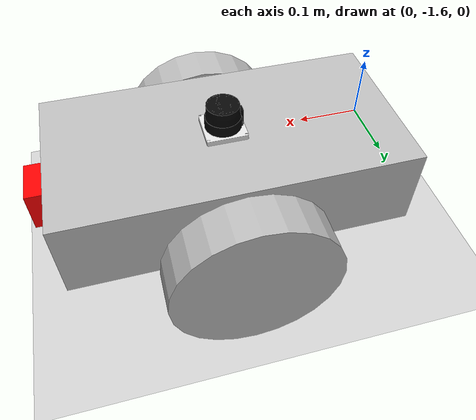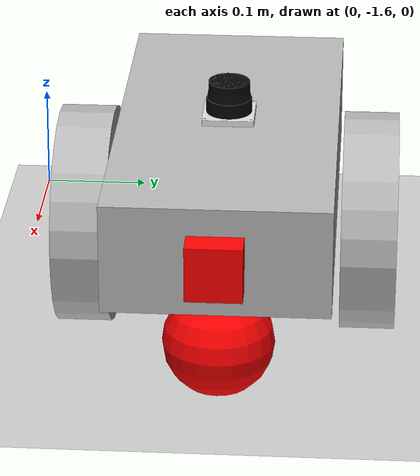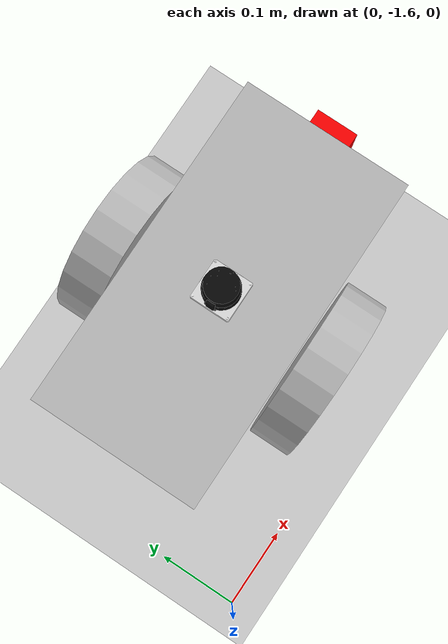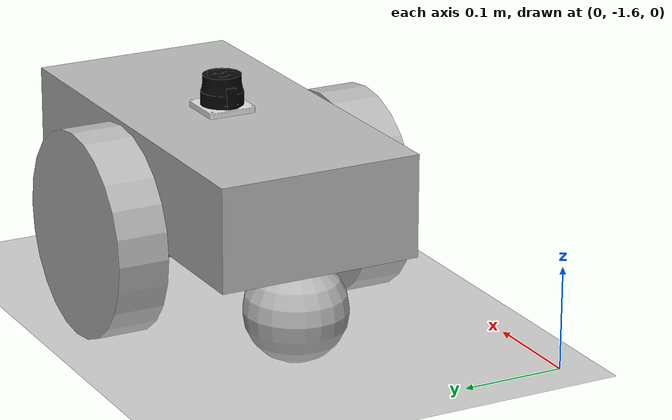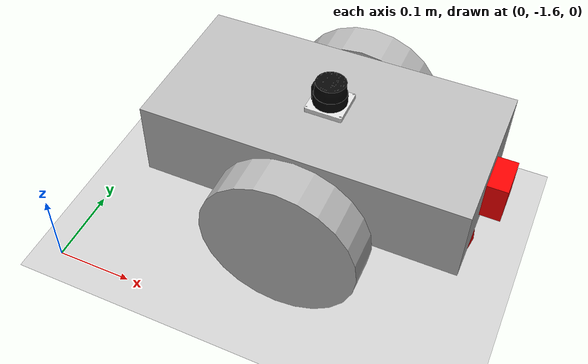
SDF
<sdf version="1.6">
 <world name="default">
  <light name="sun" type="directional">
   <pose>0 0 10 0 -0 0</pose>
   <diffuse>0.8 0.8 0.8 1</diffuse>
   <specular>0.2 0.2 0.2 1</specular>
   <attenuation>
    <range>1000</range>
    <constant>0.9</constant>
    <linear>0.01</linear>
    <quadratic>0.001</quadratic>
   </attenuation>
   <direction>-0.5 0.1 -0.9</direction>
  </light>
  <model name="ground_plane">
   <static>1</static>
   <link name="link">
    <collision name="collision">
     <geometry><plane><normal>0 0 1</normal><size>100 100</size></plane></geometry>
     <surface><friction><ode><mu>100</mu><mu2>50</mu2></ode></friction></surface>
    </collision>
    <visual name="visual">
     <cast_shadows>0</cast_shadows>
     <geometry><plane><normal>0 0 1</normal><size>100 100</size></plane></geometry>
     <material>
      <script><uri>file://media/materials/scripts/gazebo.material</uri><name>Gazebo/Grey</name></script>
     </material>
    </visual>
   </link>
  </model>
  <gravity>0 0 -9.8</gravity>
  <magnetic_field>6e-06 2.3e-05 -4.2e-05</magnetic_field>
  <atmosphere type="adiabatic"/>
  <physics name="default_physics" default="0" type="ode">
   <max_step_size>0.001</max_step_size>
   <real_time_factor>1</real_time_factor>
   <real_time_update_rate>1000</real_time_update_rate>
  </physics>
  <scene><ambient>0.4 0.4 0.4 1</ambient><background>0.7 0.7 0.7 1</background><shadows>1</shadows></scene>
  <spherical_coordinates>
   <surface_model>EARTH_WGS84</surface_model>
   <latitude_deg>0</latitude_deg>
   <longitude_deg>0</longitude_deg>
   <elevation>0</elevation>
   <heading_deg>0</heading_deg>
  </spherical_coordinates>
  <model name="my_robot">
   <static>0</static>
   <link name="chassis">
    <pose>0 0 0.1 0 -0 0</pose>
    <collision name="collision"><geometry><box><size>0.4 0.2 0.1</size></box></geometry></collision>
    <visual name="visual">
     <pose>0 0 0.05 0 -0 0</pose>
     <geometry><box><size>0.4 0.2 0.1</size></box></geometry>
    </visual>
    <visual name="just_something">
     <pose>0.2 0.0 0.05 0 -0 0</pose>
     <geometry><box><size>0.05 0.05 0.05</size></box></geometry>
     <material>
      <ambient>1 0 0 1</ambient>
      <diffuse>1 0 0 1</diffuse>
      <specular>0.1 0.1 0.1 1</specular>
      <emissive>0 0 0 0</emissive>
     </material>
    </visual>
    <collision name="caster_collision">
     <pose>0.15 0 -0.05 0 -0 0</pose>
     <geometry><sphere><radius>0.05</radius></sphere></geometry>
     <surface><friction><ode><mu>0</mu><mu2>0</mu2><slip1>1</slip1><slip2>1</slip2></ode></friction></surface>
    </collision>
    <visual name="caster_visual">
     <pose>0.15 0.0 -0.05 0 -0 0</pose>
     <geometry><sphere><radius>0.05</radius></sphere></geometry>
     <material>
      <ambient>1 0 0 1</ambient>
      <diffuse>1 0 0 1</diffuse>
      <specular>0.1 0.1 0.1 1</specular>
      <emissive>0 0 0 0</emissive>
     </material>
    </visual>
    <inertial>
     <inertia><ixx>1</ixx><ixy>0</ixy><ixz>0</ixz><iyy>1</iyy><iyz>0</iyz><izz>1</izz></inertia>
     <mass>1</mass>
    </inertial>
    <collision name="caster_collision_bis">
     <pose>-0.15 0 -0.05 0 -0 0</pose>
     <geometry><sphere><radius>0.05</radius></sphere></geometry>
     <surface><friction><ode><mu>0</mu><mu2>0</mu2><slip1>1</slip1><slip2>1</slip2></ode></friction></surface>
    </collision>
    <visual name="caster_visual_bis">
     <pose>-0.15 0 -0.05 0 -0 0</pose>
     <geometry><sphere><radius>0.05</radius></sphere></geometry>
    </visual>
   </link>
   <link name="left_wheel">
    <pose>0.0 0.13 0.1 -0 1.5707 1.5707</pose>
    <collision name="collision">
     <geometry><cylinder><radius>0.1</radius><length>0.05</length></cylinder></geometry>
    </collision>
    <visual name="visual">
     <geometry><cylinder><radius>0.1</radius><length>0.05</length></cylinder></geometry>
    </visual>
    <inertial>
     <inertia><ixx>1</ixx><ixy>0</ixy><ixz>0</ixz><iyy>1</iyy><iyz>0</iyz><izz>1</izz></inertia>
     <mass>1</mass>
    </inertial>
   </link>
   <link name="right_wheel">
    <pose>0.0 -0.13 0.1 -0 1.5707 1.5707</pose>
    <collision name="collision">
     <geometry><cylinder><radius>0.1</radius><length>0.05</length></cylinder></geometry>
    </collision>
    <visual name="visual">
     <geometry><cylinder><radius>0.1</radius><length>0.05</length></cylinder></geometry>
    </visual>
    <inertial>
     <inertia><ixx>1</ixx><ixy>0</ixy><ixz>0</ixz><iyy>1</iyy><iyz>0</iyz><izz>1</izz></inertia>
     <mass>1</mass>
    </inertial>
   </link>
   <joint name="left_wheel_hinge" type="revolute">
    <pose>0 0 -0.03 0 -0 0</pose>
    <child>left_wheel</child>
    <parent>chassis</parent>
    <axis>
     <xyz>0 1 0</xyz>
     <use_parent_model_frame>1</use_parent_model_frame>
     <limit><lower>-1e+16</lower><upper>1e+16</upper></limit>
     <dynamics><spring_reference>0</spring_reference><spring_stiffness>0</spring_stiffness></dynamics>
    </axis>
   </joint>
   <joint name="right_wheel_hinge" type="revolute">
    <pose>0 0 0.03 0 -0 0</pose>
    <child>right_wheel</child>
    <parent>chassis</parent>
    <axis>
     <xyz>0 1 0</xyz>
     <use_parent_model_frame>1</use_parent_model_frame>
     <limit><lower>-1e+16</lower><upper>1e+16</upper></limit>
     <dynamics><spring_reference>0</spring_reference><spring_stiffness>0</spring_stiffness></dynamics>
    </axis>
   </joint>
   <link name="hokuyo::link">
    <inertial>
     <mass>0.1</mass>
     <inertia><ixx>1</ixx><ixy>0</ixy><ixz>0</ixz><iyy>1</iyy><iyz>0</iyz><izz>1</izz></inertia>
    </inertial>
    <visual name="visual">
     <geometry><mesh><uri>model://hokuyo/meshes/hokuyo.dae</uri><scale>1 1 1</scale></mesh></geometry>
    </visual>
    <collision name="collision-base">
     <pose>0 0 -0.0145 0 -0 0</pose>
     <geometry><box><size>0.05 0.05 0.041</size></box></geometry>
    </collision>
    <collision name="collision-top">
     <pose>0 0 0.0205 0 -0 0</pose>
     <geometry><cylinder><radius>0.021</radius><length>0.029</length></cylinder></geometry>
    </collision>
    <sensor name="laser" type="gpu_ray">
     <pose>0.0 0 0.0175 0 -0 0</pose>
     <ray>
      <scan>
       <horizontal>
        <samples>321</samples>
        <resolution>1</resolution>
        <min_angle>-3.1415</min_angle>
        <max_angle>3.1415</max_angle>
       </horizontal>
       <vertical><samples>1</samples><min_angle>0</min_angle><max_angle>0</max_angle></vertical>
      </scan>
      <range><min>0.08</min><max>30</max><resolution>0.01</resolution></range>
      <noise><type>gaussian</type><mean>0.0</mean><stddev>0.01</stddev></noise>
     </ray>
     <plugin name="gazebo_ros_head_hokuyo_controller" filename="/opt/ros/kinetic/lib/libgazebo_ros_gpu_laser.so">
      <topicName>/my_robot/laser/scan</topicName>
      <frameName>hokuyo::link</frameName>
     </plugin>
     <always_on>1</always_on>
     <update_rate>10</update_rate>
     <visualize>1</visualize>
    </sensor>
    <pose>0.0 0 0.2 0 -0 0</pose>
   </link>
   <joint name="hokuyo_joint" type="revolute">
    <child>hokuyo::link</child>
    <parent>chassis</parent>
    <axis>
     <xyz>0 0 1</xyz>
     <limit><upper>0</upper><lower>0</lower></limit>
     <use_parent_model_frame>1</use_parent_model_frame>
     <dynamics><spring_reference>0</spring_reference><spring_stiffness>0</spring_stiffness></dynamics>
    </axis>
   </joint>
   <pose>0.283086 -1.39532 3e-06 -3e-06 1.4e-05 0.001903</pose>
   <plugin name="differential_drive_controller" filename="libgazebo_ros_diff_drive.so">
    <alwaysOn>true</alwaysOn>
    <updateRate>20</updateRate>
    <leftJoint>left_wheel_hinge</leftJoint>
    <rightJoint>right_wheel_hinge</rightJoint>
    <wheelSeparation>0.3</wheelSeparation>
    <wheelDiameter>0.2</wheelDiameter>
    <torque>1</torque>
    <commandTopic>cmd_vel</commandTopic>
    <odometryTopic>odom</odometryTopic>
    <odometryFrame>odom</odometryFrame>
    <robotBaseFrame>base_footprint</robotBaseFrame>
    <legacyMode>false</legacyMode>
    <wheelTorque>1</wheelTorque>
    <wheelAcceleration>0.0</wheelAcceleration>
   </plugin>
   <plugin name="imu_plugin" filename="libgazebo_ros_imu.so">
    <alwaysOn>true</alwaysOn>
    <bodyName>hokuyo::link</bodyName>
    <topicName>imu</topicName>
    <gaussianNoise>0.0</gaussianNoise>
    <updateRate>20.0</updateRate>
   </plugin>
  </model>
 </world>
</sdf>
